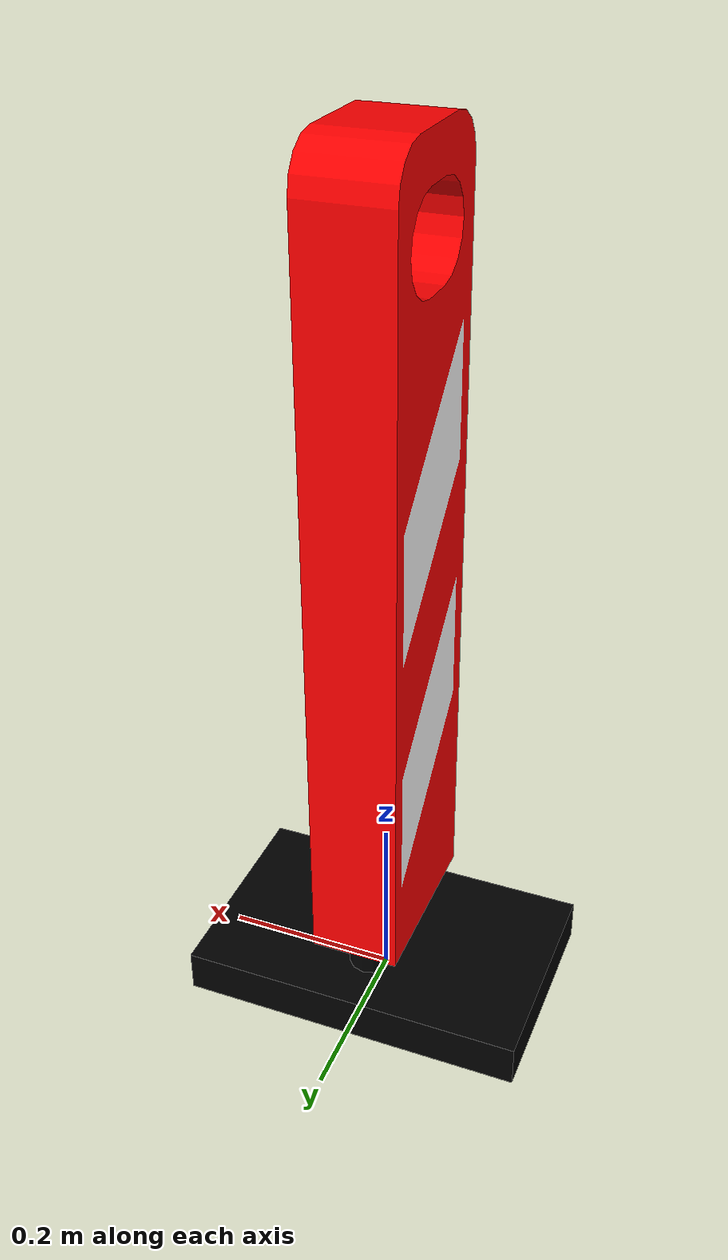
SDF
<?xml version="1.0" ?>
<sdf version="1.5">
	<model name="traffic_cone_100cm_001">
		<static>true</static>
		<link name="link">

		<collision name="collision">
			<pose>0 0 0.5 1.5707 0 0</pose>
			<geometry>
				<box>
					<size>0.400 1 0.250</size>
				</box>
			</geometry>
		</collision>

		<visual name="visual">
			<pose>0 0 0 1.5707 0 0</pose>
			<geometry>
				<mesh>
					<uri>model://traffic_cone_100cm_001/meshes/Traffic_Cone_100cm.DAE</uri>
				</mesh>
			</geometry>
		</visual>

	</link>
	</model>
</sdf>
